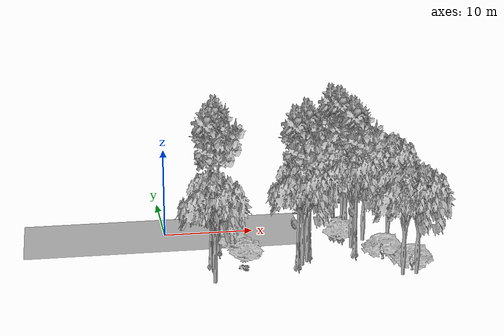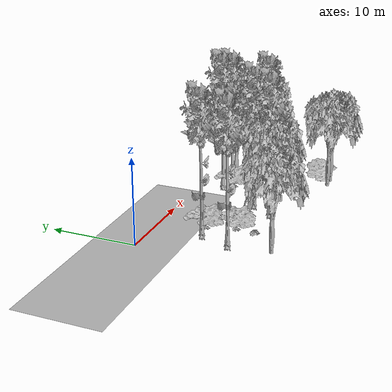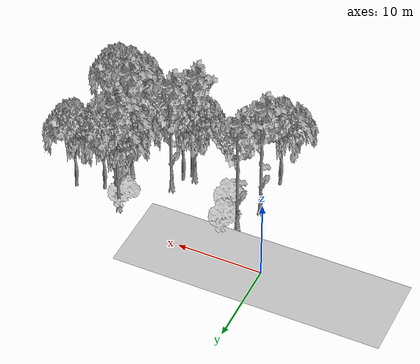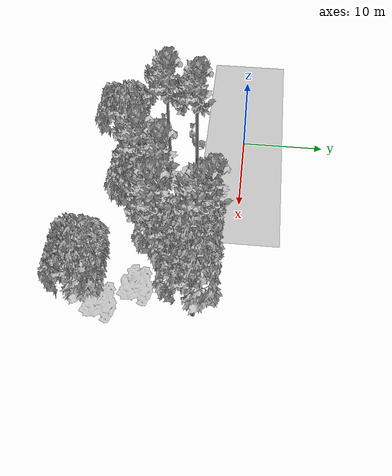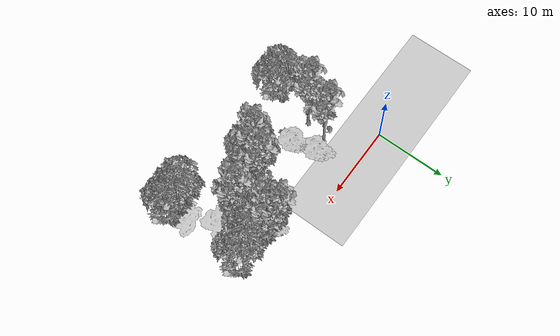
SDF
<sdf version="1.7">
 <world name="default">
  <model name="ground_plane">
   <static>1</static>
   <link name="link">
    <collision name="collision">
     <pose>-50 0 0 0 -0 0</pose>
     <geometry><plane><normal>0 0 1</normal><size>100 100</size></plane></geometry>
     <surface><contact><ode><min_depth>0.01</min_depth><max_vel>0</max_vel></ode></contact></surface>
    </collision>
    <visual name="grass">
     <cast_shadows>0</cast_shadows>
     <geometry>
      <mesh>
       <scale>0.5814285714285714 0.18142857142857144 0.1</scale>
       <uri>file://grass_plane/meshes/grass_plane.dae</uri>
      </mesh>
     </geometry>
    </visual>
   </link>
  </model>
  <model name="Tree 1">
   <static>1</static>
   <pose>14.877925519280105 -8.167728986980194 0 1.57079 -0 0</pose>
   <link name="link">
    <collision name="collision">
     <geometry><mesh><scale>3.5 5 3.5</scale><uri>model://tree_9/meshes/tree_9.obj</uri></mesh></geometry>
    </collision>
    <visual name="visual">
     <geometry><mesh><scale>3.5 5 3.5</scale><uri>model://tree_9/meshes/tree_9.obj</uri></mesh></geometry>
    </visual>
   </link>
  </model>
  <model name="Tree 13">
   <static>1</static>
   <pose>6.834853951498921 -5.358503244813338 0 1.57079 -0 0</pose>
   <link name="link">
    <collision name="collision">
     <geometry><mesh><scale>4 2.5 4</scale><uri>model://tree_1/meshes/tree_1.obj</uri></mesh></geometry>
    </collision>
    <visual name="visual">
     <geometry><mesh><scale>4 2.5 4</scale><uri>model://tree_1/meshes/tree_1.obj</uri></mesh></geometry>
    </visual>
   </link>
  </model>
  <model name="Tree 26">
   <static>1</static>
   <pose>3.758328886433567 -14.008214005512738 0 1.57079 -0 0</pose>
   <link name="link">
    <collision name="collision">
     <geometry><mesh><scale>3.5 5 3.5</scale><uri>model://tree_2/meshes/tree_2.obj</uri></mesh></geometry>
    </collision>
    <visual name="visual">
     <geometry><mesh><scale>3.5 5 3.5</scale><uri>model://tree_2/meshes/tree_2.obj</uri></mesh></geometry>
    </visual>
   </link>
  </model>
  <model name="Tree 55">
   <static>1</static>
   <pose>21.673533817966216 -4.826073173556363 0 1.57079 -0 0</pose>
   <link name="link">
    <collision name="collision">
     <geometry><mesh><scale>3.5 5 3.5</scale><uri>model://tree_2/meshes/tree_2.obj</uri></mesh></geometry>
    </collision>
    <visual name="visual">
     <geometry><mesh><scale>3.5 5 3.5</scale><uri>model://tree_2/meshes/tree_2.obj</uri></mesh></geometry>
    </visual>
   </link>
  </model>
  <model name="Tree 63">
   <static>1</static>
   <pose>4.096092623390831 -8.980743508458021 0 1.57079 -0 0</pose>
   <link name="link">
    <collision name="collision">
     <geometry><mesh><scale>3.5 5 3.5</scale><uri>model://tree_9/meshes/tree_9.obj</uri></mesh></geometry>
    </collision>
    <visual name="visual">
     <geometry><mesh><scale>3.5 5 3.5</scale><uri>model://tree_9/meshes/tree_9.obj</uri></mesh></geometry>
    </visual>
   </link>
  </model>
  <model name="Tree 72">
   <static>1</static>
   <pose>22.565526906697784 -10.197472633254216 0 1.57079 -0 0</pose>
   <link name="link">
    <collision name="collision">
     <geometry><mesh><scale>3 2 3</scale><uri>model://tree_3/meshes/tree_3.obj</uri></mesh></geometry>
    </collision>
    <visual name="visual">
     <geometry><mesh><scale>3 2 3</scale><uri>model://tree_3/meshes/tree_3.obj</uri></mesh></geometry>
    </visual>
   </link>
  </model>
  <model name="Tree 74">
   <static>1</static>
   <pose>24.831256628466747 -3.8721554376169074 0 1.57079 -0 0</pose>
   <link name="link">
    <collision name="collision">
     <geometry><mesh><scale>3.5 5 3.5</scale><uri>model://tree_2/meshes/tree_2.obj</uri></mesh></geometry>
    </collision>
    <visual name="visual">
     <geometry><mesh><scale>3.5 5 3.5</scale><uri>model://tree_2/meshes/tree_2.obj</uri></mesh></geometry>
    </visual>
   </link>
  </model>
  <model name="Tree 78">
   <static>1</static>
   <pose>19.77889595432019 -4.044933374948291 0 1.57079 -0 0</pose>
   <link name="link">
    <collision name="collision">
     <geometry><mesh><scale>3.5 5 3.5</scale><uri>model://tree_2/meshes/tree_2.obj</uri></mesh></geometry>
    </collision>
    <visual name="visual">
     <geometry><mesh><scale>3.5 5 3.5</scale><uri>model://tree_2/meshes/tree_2.obj</uri></mesh></geometry>
    </visual>
   </link>
  </model>
  <model name="Tree 83">
   <static>1</static>
   <pose>19.988466670900735 -8.163575444009807 0 1.57079 -0 0</pose>
   <link name="link">
    <collision name="collision">
     <geometry><mesh><scale>3.5 5 3.5</scale><uri>model://tree_9/meshes/tree_9.obj</uri></mesh></geometry>
    </collision>
    <visual name="visual">
     <geometry><mesh><scale>3.5 5 3.5</scale><uri>model://tree_9/meshes/tree_9.obj</uri></mesh></geometry>
    </visual>
   </link>
  </model>
  <model name="Tree 92">
   <static>1</static>
   <pose>18.8194634030492 -2.659163518654447 0 1.57079 -0 0</pose>
   <link name="link">
    <collision name="collision">
     <geometry><mesh><scale>3.5 5 3.5</scale><uri>model://tree_9/meshes/tree_9.obj</uri></mesh></geometry>
    </collision>
    <visual name="visual">
     <geometry><mesh><scale>3.5 5 3.5</scale><uri>model://tree_9/meshes/tree_9.obj</uri></mesh></geometry>
    </visual>
   </link>
  </model>
  <model name="Tree 102">
   <static>1</static>
   <pose>19.589951630157387 -3.5806849951506727 0 1.57079 -0 0</pose>
   <link name="link">
    <collision name="collision">
     <geometry><mesh><scale>3.5 5 3.5</scale><uri>model://tree_9/meshes/tree_9.obj</uri></mesh></geometry>
    </collision>
    <visual name="visual">
     <geometry><mesh><scale>3.5 5 3.5</scale><uri>model://tree_9/meshes/tree_9.obj</uri></mesh></geometry>
    </visual>
   </link>
  </model>
  <model name="Tree 111">
   <static>1</static>
   <pose>13.147246591458803 -10.67054804794381 0 1.57079 -0 0</pose>
   <link name="link">
    <collision name="collision">
     <geometry><mesh><scale>3.5 5 3.5</scale><uri>model://tree_9/meshes/tree_9.obj</uri></mesh></geometry>
    </collision>
    <visual name="visual">
     <geometry><mesh><scale>3.5 5 3.5</scale><uri>model://tree_9/meshes/tree_9.obj</uri></mesh></geometry>
    </visual>
   </link>
  </model>
  <model name="Tree 117">
   <static>1</static>
   <pose>13.490660745124579 -10.88055766906607 0 1.57079 -0 0</pose>
   <link name="link">
    <collision name="collision">
     <geometry><mesh><scale>3.5 5 3.5</scale><uri>model://tree_2/meshes/tree_2.obj</uri></mesh></geometry>
    </collision>
    <visual name="visual">
     <geometry><mesh><scale>3.5 5 3.5</scale><uri>model://tree_2/meshes/tree_2.obj</uri></mesh></geometry>
    </visual>
   </link>
  </model>
  <model name="Tree 118">
   <static>1</static>
   <pose>19.82825092876726 -6.798891488951618 0 1.57079 -0 0</pose>
   <link name="link">
    <collision name="collision">
     <geometry><mesh><scale>3.5 5 3.5</scale><uri>model://tree_2/meshes/tree_2.obj</uri></mesh></geometry>
    </collision>
    <visual name="visual">
     <geometry><mesh><scale>3.5 5 3.5</scale><uri>model://tree_2/meshes/tree_2.obj</uri></mesh></geometry>
    </visual>
   </link>
  </model>
  <model name="Tree 136">
   <static>1</static>
   <pose>24.819017993853436 -14.801561327567187 0 1.57079 -0 0</pose>
   <link name="link">
    <collision name="collision">
     <geometry><mesh><scale>3.5 5 3.5</scale><uri>model://tree_2/meshes/tree_2.obj</uri></mesh></geometry>
    </collision>
    <visual name="visual">
     <geometry><mesh><scale>3.5 5 3.5</scale><uri>model://tree_2/meshes/tree_2.obj</uri></mesh></geometry>
    </visual>
   </link>
  </model>
  <model name="Tree 144">
   <static>1</static>
   <pose>14.182988073171522 -9.953907573957464 0 1.57079 -0 0</pose>
   <link name="link">
    <collision name="collision">
     <geometry><mesh><scale>3.5 5 3.5</scale><uri>model://tree_2/meshes/tree_2.obj</uri></mesh></geometry>
    </collision>
    <visual name="visual">
     <geometry><mesh><scale>3.5 5 3.5</scale><uri>model://tree_2/meshes/tree_2.obj</uri></mesh></geometry>
    </visual>
   </link>
  </model>
  <model name="Tree 146">
   <static>1</static>
   <pose>24.79409094651301 -13.643192530592458 0 1.57079 -0 0</pose>
   <link name="link">
    <collision name="collision">
     <geometry><mesh><scale>3 2 3</scale><uri>model://tree_3/meshes/tree_3.obj</uri></mesh></geometry>
    </collision>
    <visual name="visual">
     <geometry><mesh><scale>3 2 3</scale><uri>model://tree_3/meshes/tree_3.obj</uri></mesh></geometry>
    </visual>
   </link>
  </model>
  <model name="Tree 150">
   <static>1</static>
   <pose>18.885755690068564 -4.162336254499619 0 1.57079 -0 0</pose>
   <link name="link">
    <collision name="collision">
     <geometry><mesh><scale>4 2.5 4</scale><uri>model://tree_1/meshes/tree_1.obj</uri></mesh></geometry>
    </collision>
    <visual name="visual">
     <geometry><mesh><scale>4 2.5 4</scale><uri>model://tree_1/meshes/tree_1.obj</uri></mesh></geometry>
    </visual>
   </link>
  </model>
  <model name="Tree 160">
   <static>1</static>
   <pose>23.32222927324277 -14.84871846875571 0 1.57079 -0 0</pose>
   <link name="link">
    <collision name="collision">
     <geometry><mesh><scale>3.5 5 3.5</scale><uri>model://tree_2/meshes/tree_2.obj</uri></mesh></geometry>
    </collision>
    <visual name="visual">
     <geometry><mesh><scale>3.5 5 3.5</scale><uri>model://tree_2/meshes/tree_2.obj</uri></mesh></geometry>
    </visual>
   </link>
  </model>
  <model name="Tree 165">
   <static>1</static>
   <pose>5.38094411140429 -5.467971378815475 0 1.57079 -0 0</pose>
   <link name="link">
    <collision name="collision">
     <geometry><mesh><scale>3.5 5 3.5</scale><uri>model://tree_9/meshes/tree_9.obj</uri></mesh></geometry>
    </collision>
    <visual name="visual">
     <geometry><mesh><scale>3.5 5 3.5</scale><uri>model://tree_9/meshes/tree_9.obj</uri></mesh></geometry>
    </visual>
   </link>
  </model>
  <model name="Tree 174">
   <static>1</static>
   <pose>7.718711255773123 -8.667948692161364 0 1.57079 -0 0</pose>
   <link name="link">
    <collision name="collision">
     <geometry><mesh><scale>4 2.5 4</scale><uri>model://tree_1/meshes/tree_1.obj</uri></mesh></geometry>
    </collision>
    <visual name="visual">
     <geometry><mesh><scale>4 2.5 4</scale><uri>model://tree_1/meshes/tree_1.obj</uri></mesh></geometry>
    </visual>
   </link>
  </model>
  <model name="Bush 0">
   <static>1</static>
   <pose>7.336611546192103 -10.922017284645875 0 1.57079 -0 0</pose>
   <link name="link">
    <collision name="collision">
     <geometry><mesh><scale>2 2 2</scale><uri>model://bush_2/meshes/bush_2.obj</uri></mesh></geometry>
     <surface><contact><collide_without_contact>false</collide_without_contact></contact></surface>
    </collision>
    <visual name="visual">
     <geometry><mesh><scale>2 2 2</scale><uri>model://bush_2/meshes/bush_2.obj</uri></mesh></geometry>
    </visual>
   </link>
  </model>
 </world>
</sdf>
